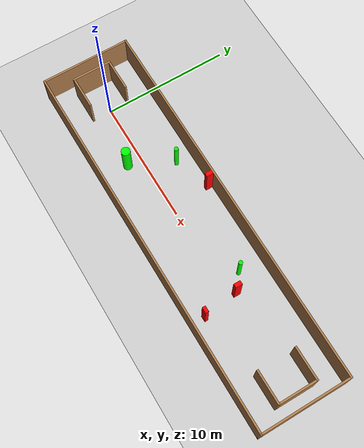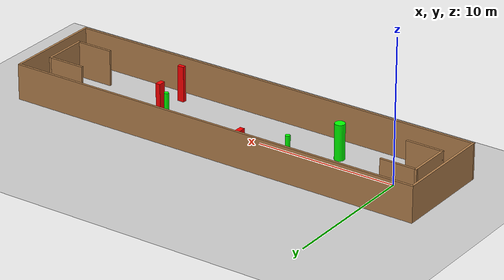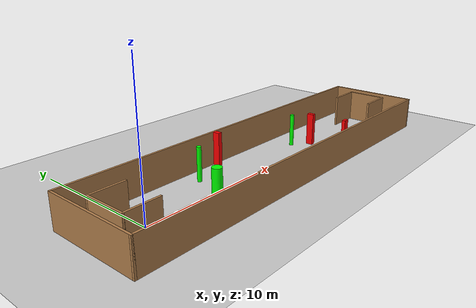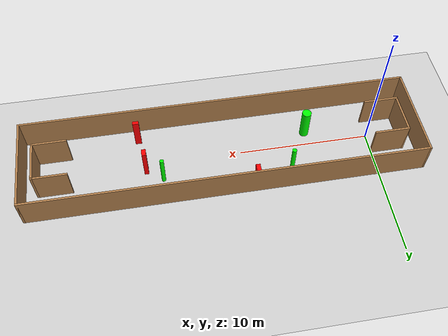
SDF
<sdf version="1.7">
 <world name="default">
  <light name="sun" type="directional">
   <pose>0 0 10 0 -0 0</pose>
   <diffuse>0.8 0.8 0.8 1</diffuse>
   <specular>0.2 0.2 0.2 1</specular>
   <attenuation>
    <range>1000</range>
    <constant>0.9</constant>
    <linear>0.01</linear>
    <quadratic>0.001</quadratic>
   </attenuation>
   <direction>-0.5 0.1 -0.9</direction>
   <spot><inner_angle>0</inner_angle><outer_angle>0</outer_angle><falloff>0</falloff></spot>
  </light>
  <model name="ground_plane">
   <static>1</static>
   <link name="link">
    <collision name="collision">
     <geometry><plane><normal>0 0 1</normal><size>100 100</size></plane></geometry>
     <surface>
      <contact><collide_bitmask>65535</collide_bitmask></contact>
      <friction><ode><mu>100</mu><mu2>50</mu2></ode></friction>
     </surface>
    </collision>
    <visual name="visual">
     <cast_shadows>0</cast_shadows>
     <geometry><plane><normal>0 0 1</normal><size>100 100</size></plane></geometry>
     <material>
      <script><uri>file://media/materials/scripts/gazebo.material</uri><name>Gazebo/Grey</name></script>
     </material>
    </visual>
   </link>
  </model>
  <gravity>0 0 -9.8</gravity>
  <magnetic_field>6e-06 2.3e-05 -4.2e-05</magnetic_field>
  <atmosphere type="adiabatic"/>
  <physics type="ode">
   <max_step_size>0.001</max_step_size>
   <real_time_factor>1</real_time_factor>
   <real_time_update_rate>1000</real_time_update_rate>
  </physics>
  <scene><ambient>0.4 0.4 0.4 1</ambient><background>0.7 0.7 0.7 1</background><shadows>1</shadows></scene>
  <spherical_coordinates>
   <surface_model>EARTH_WGS84</surface_model>
   <latitude_deg>0</latitude_deg>
   <longitude_deg>0</longitude_deg>
   <elevation>0</elevation>
   <heading_deg>0</heading_deg>
  </spherical_coordinates>
  <model name="my_base_walls">
   <link name="Wall_0">
    <collision name="Wall_0_Collision">
     <geometry><box><size>7.15 0.15 2.5</size></box></geometry>
     <pose>0 0 1.25 0 -0 0</pose>
    </collision>
    <visual name="Wall_0_Visual">
     <pose>0 0 1.25 0 -0 0</pose>
     <geometry><box><size>7.15 0.15 2.5</size></box></geometry>
     <material>
      <script><uri>file://media/materials/scripts/gazebo.material</uri><name>Gazebo/Wood</name></script>
      <ambient>1 1 1 1</ambient>
     </material>
     <meta><layer>0</layer></meta>
    </visual>
    <pose>-15 0 0 0 -0 1.5708</pose>
   </link>
   <link name="Wall_10">
    <collision name="Wall_10_Collision">
     <geometry><box><size>2.65 0.15 2.5</size></box></geometry>
     <pose>0 0 1.25 0 -0 0</pose>
    </collision>
    <visual name="Wall_10_Visual">
     <pose>0 0 1.25 0 -0 0</pose>
     <geometry><box><size>2.65 0.15 2.5</size></box></geometry>
     <material>
      <script><uri>file://media/materials/scripts/gazebo.material</uri><name>Gazebo/Wood</name></script>
      <ambient>1 1 1 1</ambient>
     </material>
     <meta><layer>0</layer></meta>
    </visual>
    <pose>-12.75 -1.5 0 0 -0 0</pose>
   </link>
   <link name="Wall_12">
    <collision name="Wall_12_Collision">
     <geometry><box><size>2.65 0.15 2.5</size></box></geometry>
     <pose>0 0 1.25 0 -0 0</pose>
    </collision>
    <visual name="Wall_12_Visual">
     <pose>0 0 1.25 0 -0 0</pose>
     <geometry><box><size>2.65 0.15 2.5</size></box></geometry>
     <material>
      <script><uri>file://media/materials/scripts/gazebo.material</uri><name>Gazebo/Wood</name></script>
      <ambient>1 1 1 1</ambient>
     </material>
     <meta><layer>0</layer></meta>
    </visual>
    <pose>-12.75 1.5 0 0 -0 0</pose>
   </link>
   <link name="Wall_14">
    <collision name="Wall_14_Collision">
     <geometry><box><size>3.15 0.15 2.5</size></box></geometry>
     <pose>0 0 1.25 0 -0 0</pose>
    </collision>
    <visual name="Wall_14_Visual">
     <pose>0 0 1.25 0 -0 0</pose>
     <geometry><box><size>3.15 0.15 2.5</size></box></geometry>
     <material>
      <script><uri>file://media/materials/scripts/gazebo.material</uri><name>Gazebo/Wood</name></script>
      <ambient>1 1 1 1</ambient>
     </material>
     <meta><layer>0</layer></meta>
    </visual>
    <pose>14 0 0 0 -0 -1.5708</pose>
   </link>
   <link name="Wall_15">
    <collision name="Wall_15_Collision">
     <geometry><box><size>2.65 0.15 2.5</size></box></geometry>
     <pose>0 0 1.25 0 -0 0</pose>
    </collision>
    <visual name="Wall_15_Visual">
     <pose>0 0 1.25 0 -0 0</pose>
     <geometry><box><size>2.65 0.15 2.5</size></box></geometry>
     <material>
      <script><uri>file://media/materials/scripts/gazebo.material</uri><name>Gazebo/Wood</name></script>
      <ambient>1 1 1 1</ambient>
     </material>
     <meta><layer>0</layer></meta>
    </visual>
    <pose>12.75 -1.5 0 0 -0 3.14159</pose>
   </link>
   <link name="Wall_17">
    <collision name="Wall_17_Collision">
     <geometry><box><size>2.65 0.15 2.5</size></box></geometry>
     <pose>0 0 1.25 0 -0 0</pose>
    </collision>
    <visual name="Wall_17_Visual">
     <pose>0 0 1.25 0 -0 0</pose>
     <geometry><box><size>2.65 0.15 2.5</size></box></geometry>
     <material>
      <script><uri>file://media/materials/scripts/gazebo.material</uri><name>Gazebo/Wood</name></script>
      <ambient>1 1 1 1</ambient>
     </material>
     <meta><layer>0</layer></meta>
    </visual>
    <pose>12.75 1.5 0 0 -0 3.14159</pose>
   </link>
   <link name="Wall_2">
    <collision name="Wall_2_Collision">
     <geometry><box><size>30.15 0.15 2.5</size></box></geometry>
     <pose>0 0 1.25 0 -0 0</pose>
    </collision>
    <visual name="Wall_2_Visual">
     <pose>0 0 1.25 0 -0 0</pose>
     <geometry><box><size>30.15 0.15 2.5</size></box></geometry>
     <material>
      <script><uri>file://media/materials/scripts/gazebo.material</uri><name>Gazebo/Wood</name></script>
      <ambient>1 1 1 1</ambient>
     </material>
     <meta><layer>0</layer></meta>
    </visual>
    <pose>-0 -3.5 0 0 -0 0</pose>
   </link>
   <link name="Wall_4">
    <collision name="Wall_4_Collision">
     <geometry><box><size>30.15 0.15 2.5</size></box></geometry>
     <pose>0 0 1.25 0 -0 0</pose>
    </collision>
    <visual name="Wall_4_Visual">
     <pose>0 0 1.25 0 -0 0</pose>
     <geometry><box><size>30.15 0.15 2.5</size></box></geometry>
     <material>
      <script><uri>file://media/materials/scripts/gazebo.material</uri><name>Gazebo/Wood</name></script>
      <ambient>1 1 1 1</ambient>
     </material>
     <meta><layer>0</layer></meta>
    </visual>
    <pose>-0 3.5 0 0 -0 0</pose>
   </link>
   <link name="Wall_6">
    <collision name="Wall_6_Collision">
     <geometry><box><size>7.15 0.15 2.5</size></box></geometry>
     <pose>0 0 1.25 0 -0 0</pose>
    </collision>
    <visual name="Wall_6_Visual">
     <pose>0 0 1.25 0 -0 0</pose>
     <geometry><box><size>7.15 0.15 2.5</size></box></geometry>
     <material>
      <script><uri>file://media/materials/scripts/gazebo.material</uri><name>Gazebo/Wood</name></script>
      <ambient>1 1 1 1</ambient>
     </material>
     <meta><layer>0</layer></meta>
    </visual>
    <pose>15 0 0 0 -0 -1.5708</pose>
   </link>
   <link name="Wall_9">
    <collision name="Wall_9_Collision">
     <geometry><box><size>3.15 0.15 2.5</size></box></geometry>
     <pose>0 0 1.25 0 -0 0</pose>
    </collision>
    <visual name="Wall_9_Visual">
     <pose>0 0 1.25 0 -0 0</pose>
     <geometry><box><size>3.15 0.15 2.5</size></box></geometry>
     <material>
      <script><uri>file://media/materials/scripts/gazebo.material</uri><name>Gazebo/Wood</name></script>
      <ambient>1 1 1 1</ambient>
     </material>
     <meta><layer>0</layer></meta>
    </visual>
    <pose>-14 0 0 0 -0 -1.5708</pose>
   </link>
   <static>1</static>
   <pose>11.5 0 0 0 -0 0</pose>
  </model>
  <model name="cylinder1">
   <static>1</static>
   <link name="link">
    <inertial>
     <mass>1</mass>
     <inertia><ixx>0.5</ixx><ixy>0</ixy><ixz>0</ixz><iyy>0.5</iyy><iyz>0</iyz><izz>1</izz></inertia>
    </inertial>
    <collision name="collision">
     <geometry><cylinder><radius>0.15371603166843928</radius><length>2.5</length></cylinder></geometry>
    </collision>
    <visual name="visual">
     <geometry><cylinder><radius>0.15371603166843928</radius><length>2.5</length></cylinder></geometry>
     <material>
      <ambient>0 1 0 1</ambient>
      <diffuse>0 1 0 1</diffuse>
      <specular>0.1 0.1 0.1 1</specular>
      <emissive>0 0 0 0</emissive>
     </material>
    </visual>
   </link>
   <pose>16.174305275430143 1.5075801105427882 1.25 0 0 0</pose>
  </model>
  <model name="cylinder2">
   <static>1</static>
   <link name="link">
    <inertial>
     <mass>1</mass>
     <inertia><ixx>0.5</ixx><ixy>0</ixy><ixz>0</ixz><iyy>0.5</iyy><iyz>0</iyz><izz>1</izz></inertia>
    </inertial>
    <collision name="collision">
     <geometry><cylinder><radius>0.34787061019203935</radius><length>2.5</length></cylinder></geometry>
    </collision>
    <visual name="visual">
     <geometry><cylinder><radius>0.34787061019203935</radius><length>2.5</length></cylinder></geometry>
     <material>
      <ambient>0 1 0 1</ambient>
      <diffuse>0 1 0 1</diffuse>
      <specular>0.1 0.1 0.1 1</specular>
      <emissive>0 0 0 0</emissive>
     </material>
    </visual>
   </link>
   <pose>4.729359726810129 -1.1279365092688831 1.25 0 0 0</pose>
  </model>
  <model name="cylinder3">
   <static>1</static>
   <link name="link">
    <inertial>
     <mass>1</mass>
     <inertia><ixx>0.5</ixx><ixy>0</ixy><ixz>0</ixz><iyy>0.5</iyy><iyz>0</iyz><izz>1</izz></inertia>
    </inertial>
    <collision name="collision">
     <geometry><cylinder><radius>0.1639859556017154</radius><length>2.5</length></cylinder></geometry>
    </collision>
    <visual name="visual">
     <geometry><cylinder><radius>0.1639859556017154</radius><length>2.5</length></cylinder></geometry>
     <material>
      <ambient>0 1 0 1</ambient>
      <diffuse>0 1 0 1</diffuse>
      <specular>0.1 0.1 0.1 1</specular>
      <emissive>0 0 0 0</emissive>
     </material>
    </visual>
   </link>
   <pose>6.441478054184113 2.128767714234831 1.25 0 0 0</pose>
  </model>
  <model name="box1">
   <static>1</static>
   <link name="link">
    <inertial>
     <mass>1</mass>
     <inertia><ixx>0.083</ixx><ixy>0</ixy><ixz>0</ixz><iyy>0.083</iyy><iyz>0</iyz><izz>0.083</izz></inertia>
    </inertial>
    <collision name="collision">
     <geometry><box><size>0.3218499437981389 0.5345468258729938 2.5</size></box></geometry>
    </collision>
    <visual name="visual">
     <geometry><box><size>0.3218499437981389 0.5345468258729938 2.5</size></box></geometry>
     <material>
      <ambient>1 0 0 1</ambient>
      <diffuse>1 0 0 1</diffuse>
      <specular>0.1 0.1 0.1 1</specular>
      <emissive>0 0 0 0</emissive>
     </material>
    </visual>
    <sensor name="my_contact" type="contact">
     <contact><collision>box_collision</collision><topic>__default_topic__</topic></contact>
    </sensor>
   </link>
   <pose>17.390507920841827 0.5241124861573221 1.25 0 0 0</pose>
  </model>
  <model name="box2">
   <static>1</static>
   <link name="link">
    <inertial>
     <mass>1</mass>
     <inertia><ixx>0.083</ixx><ixy>0</ixy><ixz>0</ixz><iyy>0.083</iyy><iyz>0</iyz><izz>0.083</izz></inertia>
    </inertial>
    <collision name="collision">
     <geometry><box><size>0.31807546052644803 0.5607141423772625 2.5</size></box></geometry>
    </collision>
    <visual name="visual">
     <geometry><box><size>0.31807546052644803 0.5607141423772625 2.5</size></box></geometry>
     <material>
      <ambient>1 0 0 1</ambient>
      <diffuse>1 0 0 1</diffuse>
      <specular>0.1 0.1 0.1 1</specular>
      <emissive>0 0 0 0</emissive>
     </material>
    </visual>
    <sensor name="my_contact" type="contact">
     <contact><collision>box_collision</collision><topic>__default_topic__</topic></contact>
    </sensor>
   </link>
   <pose>9.33459029283103 3.17063823019301 1.25 0 0 0</pose>
  </model>
  <model name="box3">
   <static>1</static>
   <link name="link">
    <inertial>
     <mass>1</mass>
     <inertia><ixx>0.083</ixx><ixy>0</ixy><ixz>0</ixz><iyy>0.083</iyy><iyz>0</iyz><izz>0.083</izz></inertia>
    </inertial>
    <collision name="collision">
     <geometry><box><size>0.46814457504341156 0.26166242009796226 2.5</size></box></geometry>
    </collision>
    <visual name="visual">
     <geometry><box><size>0.46814457504341156 0.26166242009796226 2.5</size></box></geometry>
     <material>
      <ambient>1 0 0 1</ambient>
      <diffuse>1 0 0 1</diffuse>
      <specular>0.1 0.1 0.1 1</specular>
      <emissive>0 0 0 0</emissive>
     </material>
    </visual>
    <sensor name="my_contact" type="contact">
     <contact><collision>box_collision</collision><topic>__default_topic__</topic></contact>
    </sensor>
   </link>
   <pose>17.753945955077 -2.296724114656891 1.25 0 0 0</pose>
  </model>
 </world>
</sdf>
